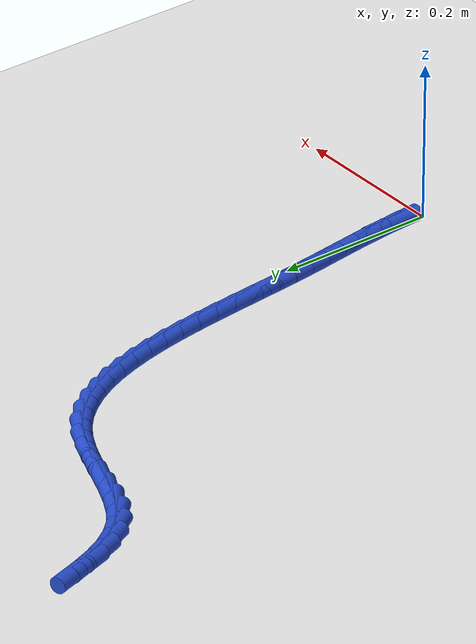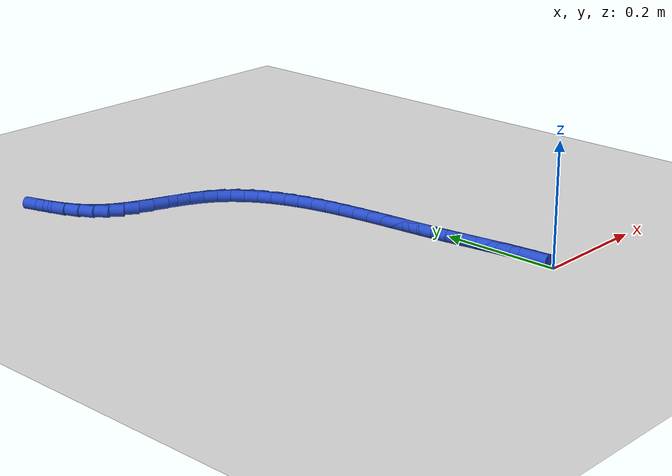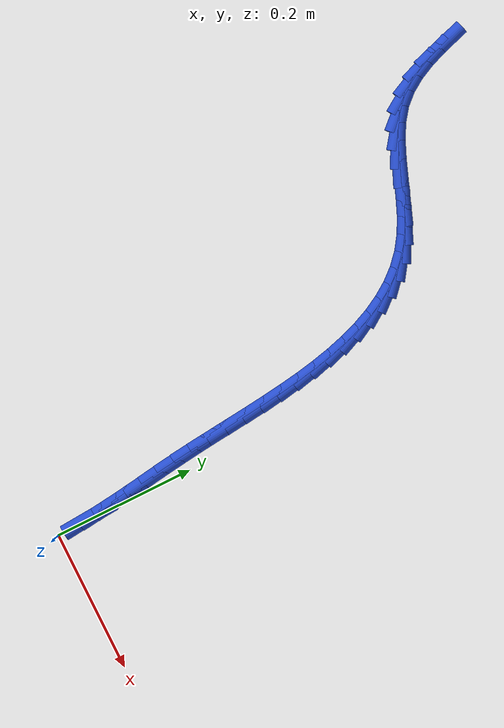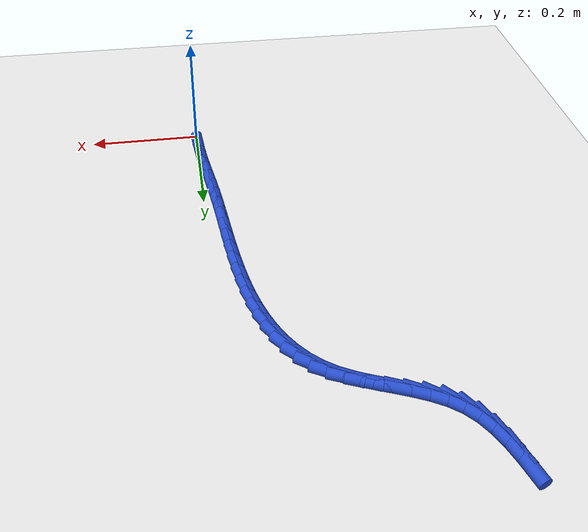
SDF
<sdf version="1.6">
 <world name="default">
  <model name="ground_plane">
   <static>1</static>
   <link name="link">
    <collision name="collision">
     <geometry><plane><normal>0 0 1</normal><size>100 100</size></plane></geometry>
     <surface><friction><ode><mu>100</mu><mu2>50</mu2></ode></friction></surface>
    </collision>
    <visual name="visual">
     <cast_shadows>0</cast_shadows>
     <geometry><plane><normal>0 0 1</normal><size>100 100</size></plane></geometry>
     <material>
      <script><uri>file://media/materials/scripts/gazebo.material</uri><name>Gazebo/WhiteGlow</name></script>
     </material>
    </visual>
   </link>
  </model>
  <model name="line">
   <link name="link_2">
    <pose>-0.0027856121124592514 0.04879555210935649 0.01 0 1.57 -1.4722192824239795</pose>
    <collision name="collision">
     <geometry><cylinder><radius>0.01</radius><length>0.08</length></cylinder></geometry>
    </collision>
    <visual name="visual">
     <material>
      <script><name>Gazebo/Blue</name><uri>file://media/materials/scripts/gazebo.material</uri></script>
     </material>
     <geometry><cylinder><radius>0.01</radius><length>0.08</length></cylinder></geometry>
    </visual>
   </link>
   <link name="link_3">
    <pose>-0.0051945439665090805 0.07315339253003382 0.01 0 1.57 -1.4533037549861612</pose>
    <collision name="collision">
     <geometry><cylinder><radius>0.01</radius><length>0.08</length></cylinder></geometry>
    </collision>
    <visual name="visual">
     <material>
      <script><name>Gazebo/Blue</name><uri>file://media/materials/scripts/gazebo.material</uri></script>
     </material>
     <geometry><cylinder><radius>0.01</radius><length>0.08</length></cylinder></geometry>
    </visual>
   </link>
   <link name="link_4">
    <pose>-0.008082181830718288 0.09761739144930345 0.01 0 1.57 -1.4411130099828349</pose>
    <collision name="collision">
     <geometry><cylinder><radius>0.01</radius><length>0.08</length></cylinder></geometry>
    </collision>
    <visual name="visual">
     <material>
      <script><name>Gazebo/Blue</name><uri>file://media/materials/scripts/gazebo.material</uri></script>
     </material>
     <geometry><cylinder><radius>0.01</radius><length>0.08</length></cylinder></geometry>
    </visual>
   </link>
   <link name="link_5">
    <pose>-0.011299492313796313 0.12228713555811013 0.01 0 1.57 -1.4355729739126433</pose>
    <collision name="collision">
     <geometry><cylinder><radius>0.01</radius><length>0.08</length></cylinder></geometry>
    </collision>
    <visual name="visual">
     <material>
      <script><name>Gazebo/Blue</name><uri>file://media/materials/scripts/gazebo.material</uri></script>
     </material>
     <geometry><cylinder><radius>0.01</radius><length>0.08</length></cylinder></geometry>
    </visual>
   </link>
   <link name="link_6">
    <pose>-0.014697442024452594 0.14726221154739857 0.01 0 1.57 -1.4364815963204869</pose>
    <collision name="collision">
     <geometry><cylinder><radius>0.01</radius><length>0.08</length></cylinder></geometry>
    </collision>
    <visual name="visual">
     <material>
      <script><name>Gazebo/Blue</name><uri>file://media/materials/scripts/gazebo.material</uri></script>
     </material>
     <geometry><cylinder><radius>0.01</radius><length>0.08</length></cylinder></geometry>
    </visual>
   </link>
   <link name="link_7">
    <pose>-0.018126997571396564 0.17264220610811343 0.01 0 1.57 -1.443529939900184</pose>
    <collision name="collision">
     <geometry><cylinder><radius>0.01</radius><length>0.08</length></cylinder></geometry>
    </collision>
    <visual name="visual">
     <material>
      <script><name>Gazebo/Blue</name><uri>file://media/materials/scripts/gazebo.material</uri></script>
     </material>
     <geometry><cylinder><radius>0.01</radius><length>0.08</length></cylinder></geometry>
    </visual>
   </link>
   <link name="link_8">
    <pose>-0.02143912556333766 0.1985267059311995 0.01 0 1.57 -1.4561993239312736</pose>
    <collision name="collision">
     <geometry><cylinder><radius>0.01</radius><length>0.08</length></cylinder></geometry>
    </collision>
    <visual name="visual">
     <material>
      <script><name>Gazebo/Blue</name><uri>file://media/materials/scripts/gazebo.material</uri></script>
     </material>
     <geometry><cylinder><radius>0.01</radius><length>0.08</length></cylinder></geometry>
    </visual>
   </link>
   <link name="link_9">
    <pose>-0.0244877044674596 0.2250127570776283 0.01 0 1.57 -1.4688358760310776</pose>
    <collision name="collision">
     <geometry><cylinder><radius>0.01</radius><length>0.08</length></cylinder></geometry>
    </collision>
    <visual name="visual">
     <material>
      <script><name>Gazebo/Blue</name><uri>file://media/materials/scripts/gazebo.material</uri></script>
     </material>
     <geometry><cylinder><radius>0.01</radius><length>0.08</length></cylinder></geometry>
    </visual>
   </link>
   <link name="link_10">
    <pose>-0.02725743035437596 0.2520832657464158 0.01 0 1.57 -1.4744268627343922</pose>
    <collision name="collision">
     <geometry><cylinder><radius>0.01</radius><length>0.08</length></cylinder></geometry>
    </collision>
    <visual name="visual">
     <material>
      <script><name>Gazebo/Blue</name><uri>file://media/materials/scripts/gazebo.material</uri></script>
     </material>
     <geometry><cylinder><radius>0.01</radius><length>0.08</length></cylinder></geometry>
    </visual>
   </link>
   <link name="link_11">
    <pose>-0.02991389560781347 0.2795633040250696 0.01 0 1.57 -1.4728524655159088</pose>
    <collision name="collision">
     <geometry><cylinder><radius>0.01</radius><length>0.08</length></cylinder></geometry>
    </collision>
    <visual name="visual">
     <material>
      <script><name>Gazebo/Blue</name><uri>file://media/materials/scripts/gazebo.material</uri></script>
     </material>
     <geometry><cylinder><radius>0.01</radius><length>0.08</length></cylinder></geometry>
    </visual>
   </link>
   <link name="link_12">
    <pose>-0.03263595121667241 0.30726637571575494 0.01 0 1.57 -1.4642603872386086</pose>
    <collision name="collision">
     <geometry><cylinder><radius>0.01</radius><length>0.08</length></cylinder></geometry>
    </collision>
    <visual name="visual">
     <material>
      <script><name>Gazebo/Blue</name><uri>file://media/materials/scripts/gazebo.material</uri></script>
     </material>
     <geometry><cylinder><radius>0.01</radius><length>0.08</length></cylinder></geometry>
    </visual>
   </link>
   <link name="link_13">
    <pose>-0.03560244816985314 0.3350059846206376 0.01 0 1.57 -1.4485445015330025</pose>
    <collision name="collision">
     <geometry><cylinder><radius>0.01</radius><length>0.08</length></cylinder></geometry>
    </collision>
    <visual name="visual">
     <material>
      <script><name>Gazebo/Blue</name><uri>file://media/materials/scripts/gazebo.material</uri></script>
     </material>
     <geometry><cylinder><radius>0.01</radius><length>0.08</length></cylinder></geometry>
    </visual>
   </link>
   <link name="link_14">
    <pose>-0.03899223745625596 0.3625956345418828 0.01 0 1.57 -1.4253548308124515</pose>
    <collision name="collision">
     <geometry><cylinder><radius>0.01</radius><length>0.08</length></cylinder></geometry>
    </collision>
    <visual name="visual">
     <material>
      <script><name>Gazebo/Blue</name><uri>file://media/materials/scripts/gazebo.material</uri></script>
     </material>
     <geometry><cylinder><radius>0.01</radius><length>0.08</length></cylinder></geometry>
    </visual>
   </link>
   <link name="link_15">
    <pose>-0.042984170064781176 0.3898488292816563 0.01 0 1.57 -1.3940994646620324</pose>
    <collision name="collision">
     <geometry><cylinder><radius>0.01</radius><length>0.08</length></cylinder></geometry>
    </collision>
    <visual name="visual">
     <material>
      <script><name>Gazebo/Blue</name><uri>file://media/materials/scripts/gazebo.material</uri></script>
     </material>
     <geometry><cylinder><radius>0.01</radius><length>0.08</length></cylinder></geometry>
    </visual>
   </link>
   <link name="link_16">
    <pose>-0.04775709698432912 0.4165790726421235 0.01 0 1.57 -1.3539455619849068</pose>
    <collision name="collision">
     <geometry><cylinder><radius>0.01</radius><length>0.08</length></cylinder></geometry>
    </collision>
    <visual name="visual">
     <material>
      <script><name>Gazebo/Blue</name><uri>file://media/materials/scripts/gazebo.material</uri></script>
     </material>
     <geometry><cylinder><radius>0.01</radius><length>0.08</length></cylinder></geometry>
    </visual>
   </link>
   <link name="link_17">
    <pose>-0.0534898692038001 0.4425998684254496 0.01 0 1.57 -1.3038317987262238</pose>
    <collision name="collision">
     <geometry><cylinder><radius>0.01</radius><length>0.08</length></cylinder></geometry>
    </collision>
    <visual name="visual">
     <material>
      <script><name>Gazebo/Blue</name><uri>file://media/materials/scripts/gazebo.material</uri></script>
     </material>
     <geometry><cylinder><radius>0.01</radius><length>0.08</length></cylinder></geometry>
    </visual>
   </link>
   <link name="link_18">
    <pose>-0.06036133771209445 0.46772472043380064 0.01 0 1.57 -1.2425137462077063</pose>
    <collision name="collision">
     <geometry><cylinder><radius>0.01</radius><length>0.08</length></cylinder></geometry>
    </collision>
    <visual name="visual">
     <material>
      <script><name>Gazebo/Blue</name><uri>file://media/materials/scripts/gazebo.material</uri></script>
     </material>
     <geometry><cylinder><radius>0.01</radius><length>0.08</length></cylinder></geometry>
    </visual>
   </link>
   <link name="link_19">
    <pose>-0.06855035349811245 0.49176713246934156 0.01 0 1.57 -1.1686770045527295</pose>
    <collision name="collision">
     <geometry><cylinder><radius>0.01</radius><length>0.08</length></cylinder></geometry>
    </collision>
    <visual name="visual">
     <material>
      <script><name>Gazebo/Blue</name><uri>file://media/materials/scripts/gazebo.material</uri></script>
     </material>
     <geometry><cylinder><radius>0.01</radius><length>0.08</length></cylinder></geometry>
    </visual>
   </link>
   <link name="link_20">
    <pose>-0.07823576755075445 0.5145406083342383 0.01 0 1.57 -1.0811662777695434</pose>
    <collision name="collision">
     <geometry><cylinder><radius>0.01</radius><length>0.08</length></cylinder></geometry>
    </collision>
    <visual name="visual">
     <material>
      <script><name>Gazebo/Blue</name><uri>file://media/materials/scripts/gazebo.material</uri></script>
     </material>
     <geometry><cylinder><radius>0.01</radius><length>0.08</length></cylinder></geometry>
    </visual>
   </link>
   <link name="link_21">
    <pose>-0.0895964308589208 0.5358586518306561 0.01 0 1.57 -0.9793761368505984</pose>
    <collision name="collision">
     <geometry><cylinder><radius>0.01</radius><length>0.08</length></cylinder></geometry>
    </collision>
    <visual name="visual">
     <material>
      <script><name>Gazebo/Blue</name><uri>file://media/materials/scripts/gazebo.material</uri></script>
     </material>
     <geometry><cylinder><radius>0.01</radius><length>0.08</length></cylinder></geometry>
    </visual>
   </link>
   <link name="link_22">
    <pose>-0.10281119441151171 0.5555347667607602 0.01 0 1.57 -0.8637971546973472</pose>
    <collision name="collision">
     <geometry><cylinder><radius>0.01</radius><length>0.08</length></cylinder></geometry>
    </collision>
    <visual name="visual">
     <material>
      <script><name>Gazebo/Blue</name><uri>file://media/materials/scripts/gazebo.material</uri></script>
     </material>
     <geometry><cylinder><radius>0.01</radius><length>0.08</length></cylinder></geometry>
    </visual>
   </link>
   <link name="link_23">
    <pose>-0.11805890919742756 0.5733824569267165 0.01 0 1.57 -0.7365743909528708</pose>
    <collision name="collision">
     <geometry><cylinder><radius>0.01</radius><length>0.08</length></cylinder></geometry>
    </collision>
    <visual name="visual">
     <material>
      <script><name>Gazebo/Blue</name><uri>file://media/materials/scripts/gazebo.material</uri></script>
     </material>
     <geometry><cylinder><radius>0.01</radius><length>0.08</length></cylinder></geometry>
    </visual>
   </link>
   <link name="link_24">
    <pose>-0.13551842620556873 0.5892152261306906 0.01 0 1.57 -0.6017796554260213</pose>
    <collision name="collision">
     <geometry><cylinder><radius>0.01</radius><length>0.08</length></cylinder></geometry>
    </collision>
    <visual name="visual">
     <material>
      <script><name>Gazebo/Blue</name><uri>file://media/materials/scripts/gazebo.material</uri></script>
     </material>
     <geometry><cylinder><radius>0.01</radius><length>0.08</length></cylinder></geometry>
    </visual>
   </link>
   <link name="link_25">
    <pose>-0.15536809744392485 0.6028470395999045 0.01 0 1.57 -0.47791307891441004</pose>
    <collision name="collision">
     <geometry><cylinder><radius>0.01</radius><length>0.08</length></cylinder></geometry>
    </collision>
    <visual name="visual">
     <material>
      <script><name>Gazebo/Blue</name><uri>file://media/materials/scripts/gazebo.material</uri></script>
     </material>
     <geometry><cylinder><radius>0.01</radius><length>0.08</length></cylinder></geometry>
    </visual>
   </link>
   <link name="link_26">
    <pose>-0.1775319438520754 0.6143270513738928 0.01 0 1.57 -0.3985733415094745</pose>
    <collision name="collision">
     <geometry><cylinder><radius>0.01</radius><length>0.08</length></cylinder></geometry>
    </collision>
    <visual name="visual">
     <material>
      <script><name>Gazebo/Blue</name><uri>file://media/materials/scripts/gazebo.material</uri></script>
     </material>
     <geometry><cylinder><radius>0.01</radius><length>0.08</length></cylinder></geometry>
    </visual>
   </link>
   <link name="link_27">
    <pose>-0.20126627155441074 0.624321874677688 0.01 0 1.57 -0.3625848382005523</pose>
    <collision name="collision">
     <geometry><cylinder><radius>0.01</radius><length>0.08</length></cylinder></geometry>
    </collision>
    <visual name="visual">
     <material>
      <script><name>Gazebo/Blue</name><uri>file://media/materials/scripts/gazebo.material</uri></script>
     </material>
     <geometry><cylinder><radius>0.01</radius><length>0.08</length></cylinder></geometry>
    </visual>
   </link>
   <link name="link_28">
    <pose>-0.22571912919185647 0.6335982322082766 0.01 0 1.57 -0.36613409223701665</pose>
    <collision name="collision">
     <geometry><cylinder><radius>0.01</radius><length>0.08</length></cylinder></geometry>
    </collision>
    <visual name="visual">
     <material>
      <script><name>Gazebo/Blue</name><uri>file://media/materials/scripts/gazebo.material</uri></script>
     </material>
     <geometry><cylinder><radius>0.01</radius><length>0.08</length></cylinder></geometry>
    </visual>
   </link>
   <link name="link_29">
    <pose>-0.25003856540533786 0.6429228466626448 0.01 0 1.57 -0.4099236502568386</pose>
    <collision name="collision">
     <geometry><cylinder><radius>0.01</radius><length>0.08</length></cylinder></geometry>
    </collision>
    <visual name="visual">
     <material>
      <script><name>Gazebo/Blue</name><uri>file://media/materials/scripts/gazebo.material</uri></script>
     </material>
     <geometry><cylinder><radius>0.01</radius><length>0.08</length></cylinder></geometry>
    </visual>
   </link>
   <link name="link_30">
    <pose>-0.2733726288357806 0.6530624407377789 0.01 0 1.57 -0.4991962111669849</pose>
    <collision name="collision">
     <geometry><cylinder><radius>0.01</radius><length>0.08</length></cylinder></geometry>
    </collision>
    <visual name="visual">
     <material>
      <script><name>Gazebo/Blue</name><uri>file://media/materials/scripts/gazebo.material</uri></script>
     </material>
     <geometry><cylinder><radius>0.01</radius><length>0.08</length></cylinder></geometry>
    </visual>
   </link>
   <link name="link_31">
    <pose>-0.29486936812411013 0.6647837371306649 0.01 0 1.57 -0.6422791448224717</pose>
    <collision name="collision">
     <geometry><cylinder><radius>0.01</radius><length>0.08</length></cylinder></geometry>
    </collision>
    <visual name="visual">
     <material>
      <script><name>Gazebo/Blue</name><uri>file://media/materials/scripts/gazebo.material</uri></script>
     </material>
     <geometry><cylinder><radius>0.01</radius><length>0.08</length></cylinder></geometry>
    </visual>
   </link>
   <link name="link_32">
    <pose>-0.31367683200368496 0.6788534584598381 0.01 0 1.57 -0.8302348601905295</pose>
    <collision name="collision">
     <geometry><cylinder><radius>0.01</radius><length>0.08</length></cylinder></geometry>
    </collision>
    <visual name="visual">
     <material>
      <script><name>Gazebo/Blue</name><uri>file://media/materials/scripts/gazebo.material</uri></script>
     </material>
     <geometry><cylinder><radius>0.01</radius><length>0.08</length></cylinder></geometry>
    </visual>
   </link>
   <link name="link_33">
    <pose>-0.32919240892249013 0.6958267037793132 0.01 0 1.57 -0.9996487132325556</pose>
    <collision name="collision">
     <geometry><cylinder><radius>0.01</radius><length>0.08</length></cylinder></geometry>
    </collision>
    <visual name="visual">
     <material>
      <script><name>Gazebo/Blue</name><uri>file://media/materials/scripts/gazebo.material</uri></script>
     </material>
     <geometry><cylinder><radius>0.01</radius><length>0.08</length></cylinder></geometry>
    </visual>
   </link>
   <link name="link_34">
    <pose>-0.34178943127350214 0.7154302534906963 0.01 0 1.57 -1.1290181772112722</pose>
    <collision name="collision">
     <geometry><cylinder><radius>0.01</radius><length>0.08</length></cylinder></geometry>
    </collision>
    <visual name="visual">
     <material>
      <script><name>Gazebo/Blue</name><uri>file://media/materials/scripts/gazebo.material</uri></script>
     </material>
     <geometry><cylinder><radius>0.01</radius><length>0.08</length></cylinder></geometry>
    </visual>
   </link>
   <link name="link_35">
    <pose>-0.35207997817159914 0.737188255084178 0.01 0 1.57 -1.2192488491653564</pose>
    <collision name="collision">
     <geometry><cylinder><radius>0.01</radius><length>0.08</length></cylinder></geometry>
    </collision>
    <visual name="visual">
     <material>
      <script><name>Gazebo/Blue</name><uri>file://media/materials/scripts/gazebo.material</uri></script>
     </material>
     <geometry><cylinder><radius>0.01</radius><length>0.08</length></cylinder></geometry>
    </visual>
   </link>
   <link name="link_36">
    <pose>-0.36067612873165933 0.7606248560499487 0.01 0 1.57 -1.2748020730496026</pose>
    <collision name="collision">
     <geometry><cylinder><radius>0.01</radius><length>0.08</length></cylinder></geometry>
    </collision>
    <visual name="visual">
     <material>
      <script><name>Gazebo/Blue</name><uri>file://media/materials/scripts/gazebo.material</uri></script>
     </material>
     <geometry><cylinder><radius>0.01</radius><length>0.08</length></cylinder></geometry>
    </visual>
   </link>
   <link name="link_292">
    <pose>-0.003061185552168561 0.0486168802518651 0.01 0 1.57 -1.5079138542834427</pose>
    <collision name="collision">
     <geometry><cylinder><radius>0.01</radius><length>0.08</length></cylinder></geometry>
    </collision>
    <visual name="visual">
     <material>
      <script><name>Gazebo/Blue</name><uri>file://media/materials/scripts/gazebo.material</uri></script>
     </material>
     <geometry><cylinder><radius>0.01</radius><length>0.08</length></cylinder></geometry>
    </visual>
   </link>
  </model>
 </world>
</sdf>
